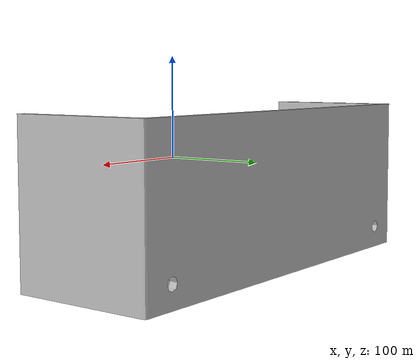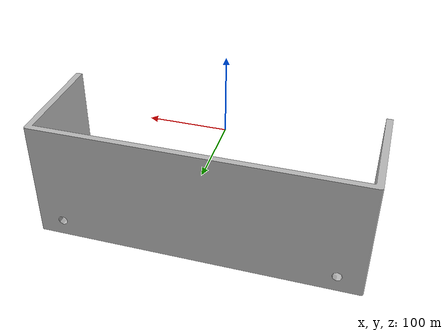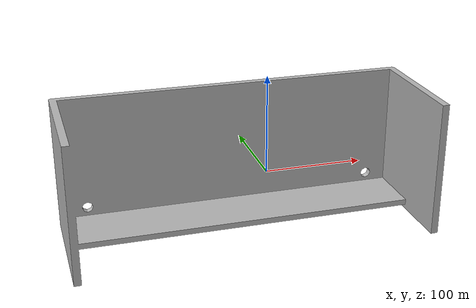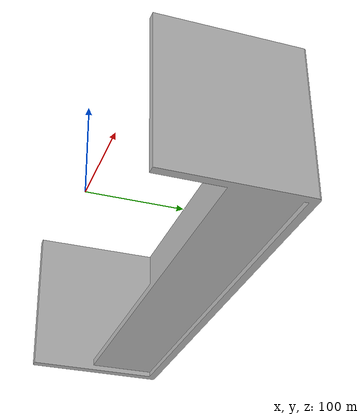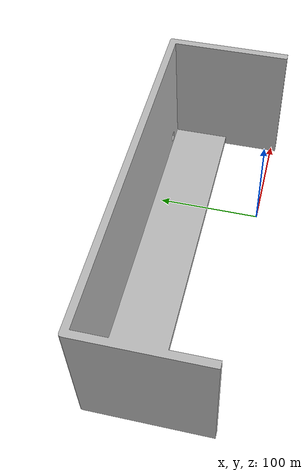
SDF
<?xml version="1.0" ?>
<sdf version="1.6">
  <model name="kdarpa_desk">
    <static>true</static>
    <link name="link">
      <collision name="collision">
        <pose>0 0 0 0 0 0</pose>
        <geometry>
          <mesh>
            <uri>model://kdarpa_desk/meshes/Desk.dae</uri>
          </mesh>
        </geometry>
      </collision>
      <visual name="visual">
        <pose>0 0 0 0 0 0</pose>
        <geometry>
          <mesh>
            <uri>model://kdarpa_desk/meshes/Desk.obj</uri>
          </mesh>
        </geometry>
      </visual>
    </link>
  </model>
</sdf>
